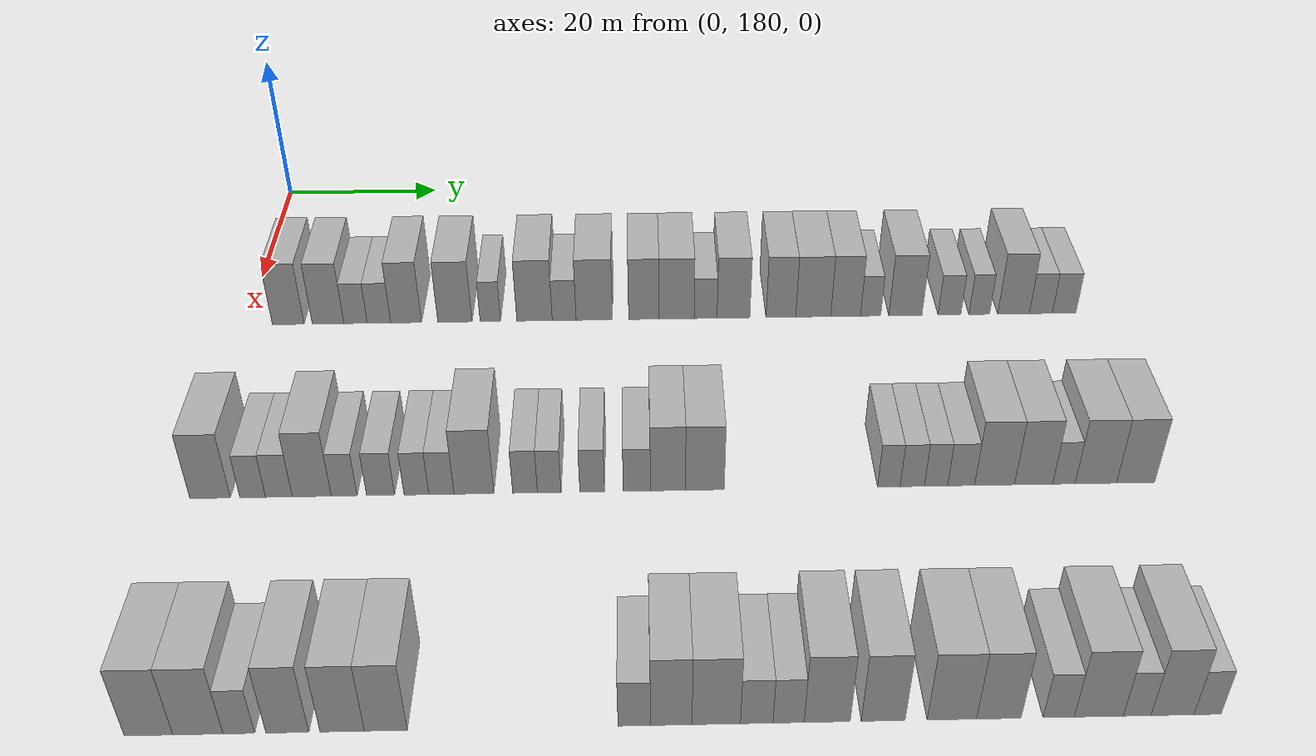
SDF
<sdf version="1.6">
 <world name="default">
  <model name="building_115">
   <static>1</static>
   <pose>25.0000 185.1047 0 0.000000 0.000000 0.000000</pose>
   <link name="link">
    <pose>0 0 4.50 0 0 0</pose>
    <collision name="collision"><geometry><box><size>10.0000 3.8552 9.0000</size></box></geometry></collision>
    <visual name="visual">
     <cast_shadows>0</cast_shadows>
     <geometry><box><size>10.0000 3.8552 9.0000</size></box></geometry>
     <material>
      <script>
       <uri>model://HANNAS_wall/materials/scripts</uri>
       <uri>model://HANNAS_wall/materials/textures</uri>
       <name>vrc/HANNAS_wall</name>
      </script>
     </material>
    </visual>
   </link>
  </model>
  <model name="building_116">
   <static>1</static>
   <pose>25.0000 189.9615 0 0.000000 0.000000 0.000000</pose>
   <link name="link">
    <pose>0 0 4.50 0 0 0</pose>
    <collision name="collision"><geometry><box><size>10.0000 3.8583 9.0000</size></box></geometry></collision>
    <visual name="visual">
     <cast_shadows>0</cast_shadows>
     <geometry><box><size>10.0000 3.8583 9.0000</size></box></geometry>
     <material>
      <script>
       <uri>model://HANNAS_wall/materials/scripts</uri>
       <uri>model://HANNAS_wall/materials/textures</uri>
       <name>vrc/HANNAS_wall</name>
      </script>
     </material>
    </visual>
   </link>
  </model>
  <model name="building_117">
   <static>1</static>
   <pose>25.0000 193.3164 0 0.000000 0.000000 0.000000</pose>
   <link name="link">
    <pose>0 0 3.00 0 0 0</pose>
    <collision name="collision"><geometry><box><size>10.0000 2.8515 6.0000</size></box></geometry></collision>
    <visual name="visual">
     <cast_shadows>0</cast_shadows>
     <geometry><box><size>10.0000 2.8515 6.0000</size></box></geometry>
     <material>
      <script>
       <uri>model://HANNAS_wall/materials/scripts</uri>
       <uri>model://HANNAS_wall/materials/textures</uri>
       <name>vrc/HANNAS_wall</name>
      </script>
     </material>
    </visual>
   </link>
  </model>
  <model name="building_118">
   <static>1</static>
   <pose>25.0000 196.1739 0 0.000000 0.000000 0.000000</pose>
   <link name="link">
    <pose>0 0 3.00 0 0 0</pose>
    <collision name="collision"><geometry><box><size>10.0000 2.8635 6.0000</size></box></geometry></collision>
    <visual name="visual">
     <cast_shadows>0</cast_shadows>
     <geometry><box><size>10.0000 2.8635 6.0000</size></box></geometry>
     <material>
      <script>
       <uri>model://HANNAS_wall/materials/scripts</uri>
       <uri>model://HANNAS_wall/materials/textures</uri>
       <name>vrc/HANNAS_wall</name>
      </script>
     </material>
    </visual>
   </link>
  </model>
  <model name="building_119">
   <static>1</static>
   <pose>25.0000 199.4936 0 0.000000 0.000000 0.000000</pose>
   <link name="link">
    <pose>0 0 4.50 0 0 0</pose>
    <collision name="collision"><geometry><box><size>10.0000 3.7759 9.0000</size></box></geometry></collision>
    <visual name="visual">
     <cast_shadows>0</cast_shadows>
     <geometry><box><size>10.0000 3.7759 9.0000</size></box></geometry>
     <material>
      <script>
       <uri>model://HANNAS_wall/materials/scripts</uri>
       <uri>model://HANNAS_wall/materials/textures</uri>
       <name>vrc/HANNAS_wall</name>
      </script>
     </material>
    </visual>
   </link>
  </model>
  <model name="building_120">
   <static>1</static>
   <pose>25.0000 205.4732 0 0.000000 0.000000 0.000000</pose>
   <link name="link">
    <pose>0 0 4.50 0 0 0</pose>
    <collision name="collision"><geometry><box><size>10.0000 4.1834 9.0000</size></box></geometry></collision>
    <visual name="visual">
     <cast_shadows>0</cast_shadows>
     <geometry><box><size>10.0000 4.1834 9.0000</size></box></geometry>
     <material>
      <script>
       <uri>model://HANNAS_wall/materials/scripts</uri>
       <uri>model://HANNAS_wall/materials/textures</uri>
       <name>vrc/HANNAS_wall</name>
      </script>
     </material>
    </visual>
   </link>
  </model>
  <model name="building_121">
   <static>1</static>
   <pose>25.0000 209.8141 0 0.000000 0.000000 0.000000</pose>
   <link name="link">
    <pose>0 0 3.00 0 0 0</pose>
    <collision name="collision"><geometry><box><size>10.0000 2.4983 6.0000</size></box></geometry></collision>
    <visual name="visual">
     <cast_shadows>0</cast_shadows>
     <geometry><box><size>10.0000 2.4983 6.0000</size></box></geometry>
     <material>
      <script>
       <uri>model://HANNAS_wall/materials/scripts</uri>
       <uri>model://HANNAS_wall/materials/textures</uri>
       <name>vrc/HANNAS_wall</name>
      </script>
     </material>
    </visual>
   </link>
  </model>
  <model name="building_122">
   <static>1</static>
   <pose>25.0000 215.2289 0 0.000000 0.000000 0.000000</pose>
   <link name="link">
    <pose>0 0 4.50 0 0 0</pose>
    <collision name="collision"><geometry><box><size>10.0000 4.3314 9.0000</size></box></geometry></collision>
    <visual name="visual">
     <cast_shadows>0</cast_shadows>
     <geometry><box><size>10.0000 4.3314 9.0000</size></box></geometry>
     <material>
      <script>
       <uri>model://HANNAS_wall/materials/scripts</uri>
       <uri>model://HANNAS_wall/materials/textures</uri>
       <name>vrc/HANNAS_wall</name>
      </script>
     </material>
    </visual>
   </link>
  </model>
  <model name="building_123">
   <static>1</static>
   <pose>25.0000 218.8614 0 0.000000 0.000000 0.000000</pose>
   <link name="link">
    <pose>0 0 3.00 0 0 0</pose>
    <collision name="collision"><geometry><box><size>10.0000 2.9336 6.0000</size></box></geometry></collision>
    <visual name="visual">
     <cast_shadows>0</cast_shadows>
     <geometry><box><size>10.0000 2.9336 6.0000</size></box></geometry>
     <material>
      <script>
       <uri>model://HANNAS_wall/materials/scripts</uri>
       <uri>model://HANNAS_wall/materials/textures</uri>
       <name>vrc/HANNAS_wall</name>
      </script>
     </material>
    </visual>
   </link>
  </model>
  <model name="building_124">
   <static>1</static>
   <pose>25.0000 222.5614 0 0.000000 0.000000 0.000000</pose>
   <link name="link">
    <pose>0 0 4.50 0 0 0</pose>
    <collision name="collision"><geometry><box><size>10.0000 4.4664 9.0000</size></box></geometry></collision>
    <visual name="visual">
     <cast_shadows>0</cast_shadows>
     <geometry><box><size>10.0000 4.4664 9.0000</size></box></geometry>
     <material>
      <script>
       <uri>model://HANNAS_wall/materials/scripts</uri>
       <uri>model://HANNAS_wall/materials/textures</uri>
       <name>vrc/HANNAS_wall</name>
      </script>
     </material>
    </visual>
   </link>
  </model>
  <model name="building_125">
   <static>1</static>
   <pose>25.0000 228.6683 0 0.000000 0.000000 0.000000</pose>
   <link name="link">
    <pose>0 0 4.50 0 0 0</pose>
    <collision name="collision"><geometry><box><size>10.0000 3.7473 9.0000</size></box></geometry></collision>
    <visual name="visual">
     <cast_shadows>0</cast_shadows>
     <geometry><box><size>10.0000 3.7473 9.0000</size></box></geometry>
     <material>
      <script>
       <uri>model://HANNAS_wall/materials/scripts</uri>
       <uri>model://HANNAS_wall/materials/textures</uri>
       <name>vrc/HANNAS_wall</name>
      </script>
     </material>
    </visual>
   </link>
  </model>
  <model name="building_126">
   <static>1</static>
   <pose>25.0000 232.6930 0 0.000000 0.000000 0.000000</pose>
   <link name="link">
    <pose>0 0 4.50 0 0 0</pose>
    <collision name="collision"><geometry><box><size>10.0000 4.3021 9.0000</size></box></geometry></collision>
    <visual name="visual">
     <cast_shadows>0</cast_shadows>
     <geometry><box><size>10.0000 4.3021 9.0000</size></box></geometry>
     <material>
      <script>
       <uri>model://HANNAS_wall/materials/scripts</uri>
       <uri>model://HANNAS_wall/materials/textures</uri>
       <name>vrc/HANNAS_wall</name>
      </script>
     </material>
    </visual>
   </link>
  </model>
  <model name="building_127">
   <static>1</static>
   <pose>25.0000 236.2551 0 0.000000 0.000000 0.000000</pose>
   <link name="link">
    <pose>0 0 3.00 0 0 0</pose>
    <collision name="collision"><geometry><box><size>10.0000 2.8223 6.0000</size></box></geometry></collision>
    <visual name="visual">
     <cast_shadows>0</cast_shadows>
     <geometry><box><size>10.0000 2.8223 6.0000</size></box></geometry>
     <material>
      <script>
       <uri>model://HANNAS_wall/materials/scripts</uri>
       <uri>model://HANNAS_wall/materials/textures</uri>
       <name>vrc/HANNAS_wall</name>
      </script>
     </material>
    </visual>
   </link>
  </model>
  <model name="building_128">
   <static>1</static>
   <pose>25.0000 239.6885 0 0.000000 0.000000 0.000000</pose>
   <link name="link">
    <pose>0 0 4.50 0 0 0</pose>
    <collision name="collision"><geometry><box><size>10.0000 4.0445 9.0000</size></box></geometry></collision>
    <visual name="visual">
     <cast_shadows>0</cast_shadows>
     <geometry><box><size>10.0000 4.0445 9.0000</size></box></geometry>
     <material>
      <script>
       <uri>model://HANNAS_wall/materials/scripts</uri>
       <uri>model://HANNAS_wall/materials/textures</uri>
       <name>vrc/HANNAS_wall</name>
      </script>
     </material>
    </visual>
   </link>
  </model>
  <model name="building_129">
   <static>1</static>
   <pose>25.0000 245.5400 0 0.000000 0.000000 0.000000</pose>
   <link name="link">
    <pose>0 0 4.50 0 0 0</pose>
    <collision name="collision"><geometry><box><size>10.0000 3.6584 9.0000</size></box></geometry></collision>
    <visual name="visual">
     <cast_shadows>0</cast_shadows>
     <geometry><box><size>10.0000 3.6584 9.0000</size></box></geometry>
     <material>
      <script>
       <uri>model://HANNAS_wall/materials/scripts</uri>
       <uri>model://HANNAS_wall/materials/textures</uri>
       <name>vrc/HANNAS_wall</name>
      </script>
     </material>
    </visual>
   </link>
  </model>
  <model name="building_130">
   <static>1</static>
   <pose>25.0000 249.5353 0 0.000000 0.000000 0.000000</pose>
   <link name="link">
    <pose>0 0 4.50 0 0 0</pose>
    <collision name="collision"><geometry><box><size>10.0000 4.3322 9.0000</size></box></geometry></collision>
    <visual name="visual">
     <cast_shadows>0</cast_shadows>
     <geometry><box><size>10.0000 4.3322 9.0000</size></box></geometry>
     <material>
      <script>
       <uri>model://HANNAS_wall/materials/scripts</uri>
       <uri>model://HANNAS_wall/materials/textures</uri>
       <name>vrc/HANNAS_wall</name>
      </script>
     </material>
    </visual>
   </link>
  </model>
  <model name="building_131">
   <static>1</static>
   <pose>25.0000 253.5458 0 0.000000 0.000000 0.000000</pose>
   <link name="link">
    <pose>0 0 4.50 0 0 0</pose>
    <collision name="collision"><geometry><box><size>10.0000 3.6887 9.0000</size></box></geometry></collision>
    <visual name="visual">
     <cast_shadows>0</cast_shadows>
     <geometry><box><size>10.0000 3.6887 9.0000</size></box></geometry>
     <material>
      <script>
       <uri>model://HANNAS_wall/materials/scripts</uri>
       <uri>model://HANNAS_wall/materials/textures</uri>
       <name>vrc/HANNAS_wall</name>
      </script>
     </material>
    </visual>
   </link>
  </model>
  <model name="building_132">
   <static>1</static>
   <pose>25.0000 256.6373 0 0.000000 0.000000 0.000000</pose>
   <link name="link">
    <pose>0 0 3.00 0 0 0</pose>
    <collision name="collision"><geometry><box><size>10.0000 2.4943 6.0000</size></box></geometry></collision>
    <visual name="visual">
     <cast_shadows>0</cast_shadows>
     <geometry><box><size>10.0000 2.4943 6.0000</size></box></geometry>
     <material>
      <script>
       <uri>model://HANNAS_wall/materials/scripts</uri>
       <uri>model://HANNAS_wall/materials/textures</uri>
       <name>vrc/HANNAS_wall</name>
      </script>
     </material>
    </visual>
   </link>
  </model>
  <model name="building_133">
   <static>1</static>
   <pose>25.0000 260.9428 0 0.000000 0.000000 0.000000</pose>
   <link name="link">
    <pose>0 0 4.50 0 0 0</pose>
    <collision name="collision"><geometry><box><size>10.0000 4.1168 9.0000</size></box></geometry></collision>
    <visual name="visual">
     <cast_shadows>0</cast_shadows>
     <geometry><box><size>10.0000 4.1168 9.0000</size></box></geometry>
     <material>
      <script>
       <uri>model://HANNAS_wall/materials/scripts</uri>
       <uri>model://HANNAS_wall/materials/textures</uri>
       <name>vrc/HANNAS_wall</name>
      </script>
     </material>
    </visual>
   </link>
  </model>
  <model name="building_134">
   <static>1</static>
   <pose>25.0000 266.4150 0 0.000000 0.000000 0.000000</pose>
   <link name="link">
    <pose>0 0 3.00 0 0 0</pose>
    <collision name="collision"><geometry><box><size>10.0000 2.8276 6.0000</size></box></geometry></collision>
    <visual name="visual">
     <cast_shadows>0</cast_shadows>
     <geometry><box><size>10.0000 2.8276 6.0000</size></box></geometry>
     <material>
      <script>
       <uri>model://HANNAS_wall/materials/scripts</uri>
       <uri>model://HANNAS_wall/materials/textures</uri>
       <name>vrc/HANNAS_wall</name>
      </script>
     </material>
    </visual>
   </link>
  </model>
  <model name="building_135">
   <static>1</static>
   <pose>25.0000 270.1102 0 0.000000 0.000000 0.000000</pose>
   <link name="link">
    <pose>0 0 3.00 0 0 0</pose>
    <collision name="collision"><geometry><box><size>10.0000 2.5628 6.0000</size></box></geometry></collision>
    <visual name="visual">
     <cast_shadows>0</cast_shadows>
     <geometry><box><size>10.0000 2.5628 6.0000</size></box></geometry>
     <material>
      <script>
       <uri>model://HANNAS_wall/materials/scripts</uri>
       <uri>model://HANNAS_wall/materials/textures</uri>
       <name>vrc/HANNAS_wall</name>
      </script>
     </material>
    </visual>
   </link>
  </model>
  <model name="building_136">
   <static>1</static>
   <pose>25.0000 274.3610 0 0.000000 0.000000 0.000000</pose>
   <link name="link">
    <pose>0 0 4.50 0 0 0</pose>
    <collision name="collision"><geometry><box><size>10.0000 3.9387 9.0000</size></box></geometry></collision>
    <visual name="visual">
     <cast_shadows>0</cast_shadows>
     <geometry><box><size>10.0000 3.9387 9.0000</size></box></geometry>
     <material>
      <script>
       <uri>model://HANNAS_wall/materials/scripts</uri>
       <uri>model://HANNAS_wall/materials/textures</uri>
       <name>vrc/HANNAS_wall</name>
      </script>
     </material>
    </visual>
   </link>
  </model>
  <model name="building_137">
   <static>1</static>
   <pose>25.0000 277.7580 0 0.000000 0.000000 0.000000</pose>
   <link name="link">
    <pose>0 0 3.00 0 0 0</pose>
    <collision name="collision"><geometry><box><size>10.0000 2.8553 6.0000</size></box></geometry></collision>
    <visual name="visual">
     <cast_shadows>0</cast_shadows>
     <geometry><box><size>10.0000 2.8553 6.0000</size></box></geometry>
     <material>
      <script>
       <uri>model://HANNAS_wall/materials/scripts</uri>
       <uri>model://HANNAS_wall/materials/textures</uri>
       <name>vrc/HANNAS_wall</name>
      </script>
     </material>
    </visual>
   </link>
  </model>
  <model name="building_138">
   <static>1</static>
   <pose>25.0000 280.6515 0 0.000000 0.000000 0.000000</pose>
   <link name="link">
    <pose>0 0 3.00 0 0 0</pose>
    <collision name="collision"><geometry><box><size>10.0000 2.9317 6.0000</size></box></geometry></collision>
    <visual name="visual">
     <cast_shadows>0</cast_shadows>
     <geometry><box><size>10.0000 2.9317 6.0000</size></box></geometry>
     <material>
      <script>
       <uri>model://HANNAS_wall/materials/scripts</uri>
       <uri>model://HANNAS_wall/materials/textures</uri>
       <name>vrc/HANNAS_wall</name>
      </script>
     </material>
    </visual>
   </link>
  </model>
  <model name="building_257">
   <static>1</static>
   <pose>55.0000 182.3854 0 0.000000 0.000000 0.000000</pose>
   <link name="link">
    <pose>0 0 4.50 0 0 0</pose>
    <collision name="collision"><geometry><box><size>10.0000 4.2758 9.0000</size></box></geometry></collision>
    <visual name="visual">
     <cast_shadows>0</cast_shadows>
     <geometry><box><size>10.0000 4.2758 9.0000</size></box></geometry>
     <material>
      <script>
       <uri>model://HANNAS_wall/materials/scripts</uri>
       <uri>model://HANNAS_wall/materials/textures</uri>
       <name>vrc/HANNAS_wall</name>
      </script>
     </material>
    </visual>
   </link>
  </model>
  <model name="building_258">
   <static>1</static>
   <pose>55.0000 186.8726 0 0.000000 0.000000 0.000000</pose>
   <link name="link">
    <pose>0 0 3.00 0 0 0</pose>
    <collision name="collision"><geometry><box><size>10.0000 2.6986 6.0000</size></box></geometry></collision>
    <visual name="visual">
     <cast_shadows>0</cast_shadows>
     <geometry><box><size>10.0000 2.6986 6.0000</size></box></geometry>
     <material>
      <script>
       <uri>model://HANNAS_wall/materials/scripts</uri>
       <uri>model://HANNAS_wall/materials/textures</uri>
       <name>vrc/HANNAS_wall</name>
      </script>
     </material>
    </visual>
   </link>
  </model>
  <model name="building_259">
   <static>1</static>
   <pose>55.0000 189.6357 0 0.000000 0.000000 0.000000</pose>
   <link name="link">
    <pose>0 0 3.00 0 0 0</pose>
    <collision name="collision"><geometry><box><size>10.0000 2.8275 6.0000</size></box></geometry></collision>
    <visual name="visual">
     <cast_shadows>0</cast_shadows>
     <geometry><box><size>10.0000 2.8275 6.0000</size></box></geometry>
     <material>
      <script>
       <uri>model://HANNAS_wall/materials/scripts</uri>
       <uri>model://HANNAS_wall/materials/textures</uri>
       <name>vrc/HANNAS_wall</name>
      </script>
     </material>
    </visual>
   </link>
  </model>
  <model name="building_260">
   <static>1</static>
   <pose>55.0000 193.1069 0 0.000000 0.000000 0.000000</pose>
   <link name="link">
    <pose>0 0 4.50 0 0 0</pose>
    <collision name="collision"><geometry><box><size>10.0000 4.1150 9.0000</size></box></geometry></collision>
    <visual name="visual">
     <cast_shadows>0</cast_shadows>
     <geometry><box><size>10.0000 4.1150 9.0000</size></box></geometry>
     <material>
      <script>
       <uri>model://HANNAS_wall/materials/scripts</uri>
       <uri>model://HANNAS_wall/materials/textures</uri>
       <name>vrc/HANNAS_wall</name>
      </script>
     </material>
    </visual>
   </link>
  </model>
  <model name="building_261">
   <static>1</static>
   <pose>55.0000 196.5313 0 0.000000 0.000000 0.000000</pose>
   <link name="link">
    <pose>0 0 3.00 0 0 0</pose>
    <collision name="collision"><geometry><box><size>10.0000 2.7338 6.0000</size></box></geometry></collision>
    <visual name="visual">
     <cast_shadows>0</cast_shadows>
     <geometry><box><size>10.0000 2.7338 6.0000</size></box></geometry>
     <material>
      <script>
       <uri>model://HANNAS_wall/materials/scripts</uri>
       <uri>model://HANNAS_wall/materials/textures</uri>
       <name>vrc/HANNAS_wall</name>
      </script>
     </material>
    </visual>
   </link>
  </model>
  <model name="building_262">
   <static>1</static>
   <pose>55.0000 200.3812 0 0.000000 0.000000 0.000000</pose>
   <link name="link">
    <pose>0 0 3.00 0 0 0</pose>
    <collision name="collision"><geometry><box><size>10.0000 2.9660 6.0000</size></box></geometry></collision>
    <visual name="visual">
     <cast_shadows>0</cast_shadows>
     <geometry><box><size>10.0000 2.9660 6.0000</size></box></geometry>
     <material>
      <script>
       <uri>model://HANNAS_wall/materials/scripts</uri>
       <uri>model://HANNAS_wall/materials/textures</uri>
       <name>vrc/HANNAS_wall</name>
      </script>
     </material>
    </visual>
   </link>
  </model>
  <model name="building_263">
   <static>1</static>
   <pose>55.0000 204.1714 0 0.000000 0.000000 0.000000</pose>
   <link name="link">
    <pose>0 0 3.00 0 0 0</pose>
    <collision name="collision"><geometry><box><size>10.0000 2.6144 6.0000</size></box></geometry></collision>
    <visual name="visual">
     <cast_shadows>0</cast_shadows>
     <geometry><box><size>10.0000 2.6144 6.0000</size></box></geometry>
     <material>
      <script>
       <uri>model://HANNAS_wall/materials/scripts</uri>
       <uri>model://HANNAS_wall/materials/textures</uri>
       <name>vrc/HANNAS_wall</name>
      </script>
     </material>
    </visual>
   </link>
  </model>
  <model name="building_264">
   <static>1</static>
   <pose>55.0000 206.8154 0 0.000000 0.000000 0.000000</pose>
   <link name="link">
    <pose>0 0 3.00 0 0 0</pose>
    <collision name="collision"><geometry><box><size>10.0000 2.6737 6.0000</size></box></geometry></collision>
    <visual name="visual">
     <cast_shadows>0</cast_shadows>
     <geometry><box><size>10.0000 2.6737 6.0000</size></box></geometry>
     <material>
      <script>
       <uri>model://HANNAS_wall/materials/scripts</uri>
       <uri>model://HANNAS_wall/materials/textures</uri>
       <name>vrc/HANNAS_wall</name>
      </script>
     </material>
    </visual>
   </link>
  </model>
  <model name="building_265">
   <static>1</static>
   <pose>55.0000 210.2683 0 0.000000 0.000000 0.000000</pose>
   <link name="link">
    <pose>0 0 4.50 0 0 0</pose>
    <collision name="collision"><geometry><box><size>10.0000 4.2320 9.0000</size></box></geometry></collision>
    <visual name="visual">
     <cast_shadows>0</cast_shadows>
     <geometry><box><size>10.0000 4.2320 9.0000</size></box></geometry>
     <material>
      <script>
       <uri>model://HANNAS_wall/materials/scripts</uri>
       <uri>model://HANNAS_wall/materials/textures</uri>
       <name>vrc/HANNAS_wall</name>
      </script>
     </material>
    </visual>
   </link>
  </model>
  <model name="building_266">
   <static>1</static>
   <pose>55.0000 215.6974 0 0.000000 0.000000 0.000000</pose>
   <link name="link">
    <pose>0 0 3.00 0 0 0</pose>
    <collision name="collision"><geometry><box><size>10.0000 2.6263 6.0000</size></box></geometry></collision>
    <visual name="visual">
     <cast_shadows>0</cast_shadows>
     <geometry><box><size>10.0000 2.6263 6.0000</size></box></geometry>
     <material>
      <script>
       <uri>model://HANNAS_wall/materials/scripts</uri>
       <uri>model://HANNAS_wall/materials/textures</uri>
       <name>vrc/HANNAS_wall</name>
      </script>
     </material>
    </visual>
   </link>
  </model>
  <model name="building_267">
   <static>1</static>
   <pose>55.0000 218.2663 0 0.000000 0.000000 0.000000</pose>
   <link name="link">
    <pose>0 0 3.00 0 0 0</pose>
    <collision name="collision"><geometry><box><size>10.0000 2.5113 6.0000</size></box></geometry></collision>
    <visual name="visual">
     <cast_shadows>0</cast_shadows>
     <geometry><box><size>10.0000 2.5113 6.0000</size></box></geometry>
     <material>
      <script>
       <uri>model://HANNAS_wall/materials/scripts</uri>
       <uri>model://HANNAS_wall/materials/textures</uri>
       <name>vrc/HANNAS_wall</name>
      </script>
     </material>
    </visual>
   </link>
  </model>
  <model name="building_268">
   <static>1</static>
   <pose>55.0000 222.8386 0 0.000000 0.000000 0.000000</pose>
   <link name="link">
    <pose>0 0 3.00 0 0 0</pose>
    <collision name="collision"><geometry><box><size>10.0000 2.6334 6.0000</size></box></geometry></collision>
    <visual name="visual">
     <cast_shadows>0</cast_shadows>
     <geometry><box><size>10.0000 2.6334 6.0000</size></box></geometry>
     <material>
      <script>
       <uri>model://HANNAS_wall/materials/scripts</uri>
       <uri>model://HANNAS_wall/materials/textures</uri>
       <name>vrc/HANNAS_wall</name>
      </script>
     </material>
    </visual>
   </link>
  </model>
  <model name="building_269">
   <static>1</static>
   <pose>55.0000 227.5955 0 0.000000 0.000000 0.000000</pose>
   <link name="link">
    <pose>0 0 3.00 0 0 0</pose>
    <collision name="collision"><geometry><box><size>10.0000 2.8803 6.0000</size></box></geometry></collision>
    <visual name="visual">
     <cast_shadows>0</cast_shadows>
     <geometry><box><size>10.0000 2.8803 6.0000</size></box></geometry>
     <material>
      <script>
       <uri>model://HANNAS_wall/materials/scripts</uri>
       <uri>model://HANNAS_wall/materials/textures</uri>
       <name>vrc/HANNAS_wall</name>
      </script>
     </material>
    </visual>
   </link>
  </model>
  <model name="building_270">
   <static>1</static>
   <pose>55.0000 230.8943 0 0.000000 0.000000 0.000000</pose>
   <link name="link">
    <pose>0 0 4.50 0 0 0</pose>
    <collision name="collision"><geometry><box><size>10.0000 3.7173 9.0000</size></box></geometry></collision>
    <visual name="visual">
     <cast_shadows>0</cast_shadows>
     <geometry><box><size>10.0000 3.7173 9.0000</size></box></geometry>
     <material>
      <script>
       <uri>model://HANNAS_wall/materials/scripts</uri>
       <uri>model://HANNAS_wall/materials/textures</uri>
       <name>vrc/HANNAS_wall</name>
      </script>
     </material>
    </visual>
   </link>
  </model>
  <model name="building_271">
   <static>1</static>
   <pose>55.0000 234.8254 0 0.000000 0.000000 0.000000</pose>
   <link name="link">
    <pose>0 0 4.50 0 0 0</pose>
    <collision name="collision"><geometry><box><size>10.0000 4.1449 9.0000</size></box></geometry></collision>
    <visual name="visual">
     <cast_shadows>0</cast_shadows>
     <geometry><box><size>10.0000 4.1449 9.0000</size></box></geometry>
     <material>
      <script>
       <uri>model://HANNAS_wall/materials/scripts</uri>
       <uri>model://HANNAS_wall/materials/textures</uri>
       <name>vrc/HANNAS_wall</name>
      </script>
     </material>
    </visual>
   </link>
  </model>
  <model name="building_272">
   <static>1</static>
   <pose>55.0000 254.5272 0 0.000000 0.000000 0.000000</pose>
   <link name="link">
    <pose>0 0 3.00 0 0 0</pose>
    <collision name="collision"><geometry><box><size>10.0000 2.4196 6.0000</size></box></geometry></collision>
    <visual name="visual">
     <cast_shadows>0</cast_shadows>
     <geometry><box><size>10.0000 2.4196 6.0000</size></box></geometry>
     <material>
      <script>
       <uri>model://HANNAS_wall/materials/scripts</uri>
       <uri>model://HANNAS_wall/materials/textures</uri>
       <name>vrc/HANNAS_wall</name>
      </script>
     </material>
    </visual>
   </link>
  </model>
  <model name="building_273">
   <static>1</static>
   <pose>55.0000 257.0341 0 0.000000 0.000000 0.000000</pose>
   <link name="link">
    <pose>0 0 3.00 0 0 0</pose>
    <collision name="collision"><geometry><box><size>10.0000 2.5943 6.0000</size></box></geometry></collision>
    <visual name="visual">
     <cast_shadows>0</cast_shadows>
     <geometry><box><size>10.0000 2.5943 6.0000</size></box></geometry>
     <material>
      <script>
       <uri>model://HANNAS_wall/materials/scripts</uri>
       <uri>model://HANNAS_wall/materials/textures</uri>
       <name>vrc/HANNAS_wall</name>
      </script>
     </material>
    </visual>
   </link>
  </model>
  <model name="building_274">
   <static>1</static>
   <pose>55.0000 259.5784 0 0.000000 0.000000 0.000000</pose>
   <link name="link">
    <pose>0 0 3.00 0 0 0</pose>
    <collision name="collision"><geometry><box><size>10.0000 2.4942 6.0000</size></box></geometry></collision>
    <visual name="visual">
     <cast_shadows>0</cast_shadows>
     <geometry><box><size>10.0000 2.4942 6.0000</size></box></geometry>
     <material>
      <script>
       <uri>model://HANNAS_wall/materials/scripts</uri>
       <uri>model://HANNAS_wall/materials/textures</uri>
       <name>vrc/HANNAS_wall</name>
      </script>
     </material>
    </visual>
   </link>
  </model>
  <model name="building_275">
   <static>1</static>
   <pose>55.0000 262.2783 0 0.000000 0.000000 0.000000</pose>
   <link name="link">
    <pose>0 0 3.00 0 0 0</pose>
    <collision name="collision"><geometry><box><size>10.0000 2.9055 6.0000</size></box></geometry></collision>
    <visual name="visual">
     <cast_shadows>0</cast_shadows>
     <geometry><box><size>10.0000 2.9055 6.0000</size></box></geometry>
     <material>
      <script>
       <uri>model://HANNAS_wall/materials/scripts</uri>
       <uri>model://HANNAS_wall/materials/textures</uri>
       <name>vrc/HANNAS_wall</name>
      </script>
     </material>
    </visual>
   </link>
  </model>
  <model name="building_276">
   <static>1</static>
   <pose>55.0000 265.8758 0 0.000000 0.000000 0.000000</pose>
   <link name="link">
    <pose>0 0 4.50 0 0 0</pose>
    <collision name="collision"><geometry><box><size>10.0000 4.2895 9.0000</size></box></geometry></collision>
    <visual name="visual">
     <cast_shadows>0</cast_shadows>
     <geometry><box><size>10.0000 4.2895 9.0000</size></box></geometry>
     <material>
      <script>
       <uri>model://HANNAS_wall/materials/scripts</uri>
       <uri>model://HANNAS_wall/materials/textures</uri>
       <name>vrc/HANNAS_wall</name>
      </script>
     </material>
    </visual>
   </link>
  </model>
  <model name="building_277">
   <static>1</static>
   <pose>55.0000 270.0731 0 0.000000 0.000000 0.000000</pose>
   <link name="link">
    <pose>0 0 4.50 0 0 0</pose>
    <collision name="collision"><geometry><box><size>10.0000 4.1050 9.0000</size></box></geometry></collision>
    <visual name="visual">
     <cast_shadows>0</cast_shadows>
     <geometry><box><size>10.0000 4.1050 9.0000</size></box></geometry>
     <material>
      <script>
       <uri>model://HANNAS_wall/materials/scripts</uri>
       <uri>model://HANNAS_wall/materials/textures</uri>
       <name>vrc/HANNAS_wall</name>
      </script>
     </material>
    </visual>
   </link>
  </model>
  <model name="building_278">
   <static>1</static>
   <pose>55.0000 273.3343 0 0.000000 0.000000 0.000000</pose>
   <link name="link">
    <pose>0 0 3.00 0 0 0</pose>
    <collision name="collision"><geometry><box><size>10.0000 2.4174 6.0000</size></box></geometry></collision>
    <visual name="visual">
     <cast_shadows>0</cast_shadows>
     <geometry><box><size>10.0000 2.4174 6.0000</size></box></geometry>
     <material>
      <script>
       <uri>model://HANNAS_wall/materials/scripts</uri>
       <uri>model://HANNAS_wall/materials/textures</uri>
       <name>vrc/HANNAS_wall</name>
      </script>
     </material>
    </visual>
   </link>
  </model>
  <model name="building_279">
   <static>1</static>
   <pose>55.0000 276.7781 0 0.000000 0.000000 0.000000</pose>
   <link name="link">
    <pose>0 0 4.50 0 0 0</pose>
    <collision name="collision"><geometry><box><size>10.0000 4.4703 9.0000</size></box></geometry></collision>
    <visual name="visual">
     <cast_shadows>0</cast_shadows>
     <geometry><box><size>10.0000 4.4703 9.0000</size></box></geometry>
     <material>
      <script>
       <uri>model://HANNAS_wall/materials/scripts</uri>
       <uri>model://HANNAS_wall/materials/textures</uri>
       <name>vrc/HANNAS_wall</name>
      </script>
     </material>
    </visual>
   </link>
  </model>
  <model name="building_280">
   <static>1</static>
   <pose>55.0000 281.0732 0 0.000000 0.000000 0.000000</pose>
   <link name="link">
    <pose>0 0 4.50 0 0 0</pose>
    <collision name="collision"><geometry><box><size>10.0000 4.1199 9.0000</size></box></geometry></collision>
    <visual name="visual">
     <cast_shadows>0</cast_shadows>
     <geometry><box><size>10.0000 4.1199 9.0000</size></box></geometry>
     <material>
      <script>
       <uri>model://HANNAS_wall/materials/scripts</uri>
       <uri>model://HANNAS_wall/materials/textures</uri>
       <name>vrc/HANNAS_wall</name>
      </script>
     </material>
    </visual>
   </link>
  </model>
  <model name="building_391">
   <static>1</static>
   <pose>85.0000 183.6862 0 0.000000 0.000000 0.000000</pose>
   <link name="link">
    <pose>0 0 4.50 0 0 0</pose>
    <collision name="collision"><geometry><box><size>10.0000 4.3220 9.0000</size></box></geometry></collision>
    <visual name="visual">
     <cast_shadows>0</cast_shadows>
     <geometry><box><size>10.0000 4.3220 9.0000</size></box></geometry>
     <material>
      <script>
       <uri>model://HANNAS_wall/materials/scripts</uri>
       <uri>model://HANNAS_wall/materials/textures</uri>
       <name>vrc/HANNAS_wall</name>
      </script>
     </material>
    </visual>
   </link>
  </model>
  <model name="building_392">
   <static>1</static>
   <pose>85.0000 188.0830 0 0.000000 0.000000 0.000000</pose>
   <link name="link">
    <pose>0 0 4.50 0 0 0</pose>
    <collision name="collision"><geometry><box><size>10.0000 4.4716 9.0000</size></box></geometry></collision>
    <visual name="visual">
     <cast_shadows>0</cast_shadows>
     <geometry><box><size>10.0000 4.4716 9.0000</size></box></geometry>
     <material>
      <script>
       <uri>model://HANNAS_wall/materials/scripts</uri>
       <uri>model://HANNAS_wall/materials/textures</uri>
       <name>vrc/HANNAS_wall</name>
      </script>
     </material>
    </visual>
   </link>
  </model>
  <model name="building_393">
   <static>1</static>
   <pose>85.0000 191.7302 0 0.000000 0.000000 0.000000</pose>
   <link name="link">
    <pose>0 0 3.00 0 0 0</pose>
    <collision name="collision"><geometry><box><size>10.0000 2.8227 6.0000</size></box></geometry></collision>
    <visual name="visual">
     <cast_shadows>0</cast_shadows>
     <geometry><box><size>10.0000 2.8227 6.0000</size></box></geometry>
     <material>
      <script>
       <uri>model://HANNAS_wall/materials/scripts</uri>
       <uri>model://HANNAS_wall/materials/textures</uri>
       <name>vrc/HANNAS_wall</name>
      </script>
     </material>
    </visual>
   </link>
  </model>
  <model name="building_394">
   <static>1</static>
   <pose>85.0000 196.0574 0 0.000000 0.000000 0.000000</pose>
   <link name="link">
    <pose>0 0 4.50 0 0 0</pose>
    <collision name="collision"><geometry><box><size>10.0000 3.8317 9.0000</size></box></geometry></collision>
    <visual name="visual">
     <cast_shadows>0</cast_shadows>
     <geometry><box><size>10.0000 3.8317 9.0000</size></box></geometry>
     <material>
      <script>
       <uri>model://HANNAS_wall/materials/scripts</uri>
       <uri>model://HANNAS_wall/materials/textures</uri>
       <name>vrc/HANNAS_wall</name>
      </script>
     </material>
    </visual>
   </link>
  </model>
  <model name="building_395">
   <static>1</static>
   <pose>85.0000 200.9519 0 0.000000 0.000000 0.000000</pose>
   <link name="link">
    <pose>0 0 4.50 0 0 0</pose>
    <collision name="collision"><geometry><box><size>10.0000 3.9573 9.0000</size></box></geometry></collision>
    <visual name="visual">
     <cast_shadows>0</cast_shadows>
     <geometry><box><size>10.0000 3.9573 9.0000</size></box></geometry>
     <material>
      <script>
       <uri>model://HANNAS_wall/materials/scripts</uri>
       <uri>model://HANNAS_wall/materials/textures</uri>
       <name>vrc/HANNAS_wall</name>
      </script>
     </material>
    </visual>
   </link>
  </model>
  <model name="building_396">
   <static>1</static>
   <pose>85.0000 204.8500 0 0.000000 0.000000 0.000000</pose>
   <link name="link">
    <pose>0 0 4.50 0 0 0</pose>
    <collision name="collision"><geometry><box><size>10.0000 3.8388 9.0000</size></box></geometry></collision>
    <visual name="visual">
     <cast_shadows>0</cast_shadows>
     <geometry><box><size>10.0000 3.8388 9.0000</size></box></geometry>
     <material>
      <script>
       <uri>model://HANNAS_wall/materials/scripts</uri>
       <uri>model://HANNAS_wall/materials/textures</uri>
       <name>vrc/HANNAS_wall</name>
      </script>
     </material>
    </visual>
   </link>
  </model>
  <model name="building_397">
   <static>1</static>
   <pose>85.0000 227.1525 0 0.000000 0.000000 0.000000</pose>
   <link name="link">
    <pose>0 0 3.00 0 0 0</pose>
    <collision name="collision"><geometry><box><size>10.0000 2.9221 6.0000</size></box></geometry></collision>
    <visual name="visual">
     <cast_shadows>0</cast_shadows>
     <geometry><box><size>10.0000 2.9221 6.0000</size></box></geometry>
     <material>
      <script>
       <uri>model://HANNAS_wall/materials/scripts</uri>
       <uri>model://HANNAS_wall/materials/textures</uri>
       <name>vrc/HANNAS_wall</name>
      </script>
     </material>
    </visual>
   </link>
  </model>
  <model name="building_398">
   <static>1</static>
   <pose>85.0000 230.4818 0 0.000000 0.000000 0.000000</pose>
   <link name="link">
    <pose>0 0 4.50 0 0 0</pose>
    <collision name="collision"><geometry><box><size>10.0000 3.7366 9.0000</size></box></geometry></collision>
    <visual name="visual">
     <cast_shadows>0</cast_shadows>
     <geometry><box><size>10.0000 3.7366 9.0000</size></box></geometry>
     <material>
      <script>
       <uri>model://HANNAS_wall/materials/scripts</uri>
       <uri>model://HANNAS_wall/materials/textures</uri>
       <name>vrc/HANNAS_wall</name>
      </script>
     </material>
    </visual>
   </link>
  </model>
  <model name="building_399">
   <static>1</static>
   <pose>85.0000 234.5382 0 0.000000 0.000000 0.000000</pose>
   <link name="link">
    <pose>0 0 4.50 0 0 0</pose>
    <collision name="collision"><geometry><box><size>10.0000 4.3761 9.0000</size></box></geometry></collision>
    <visual name="visual">
     <cast_shadows>0</cast_shadows>
     <geometry><box><size>10.0000 4.3761 9.0000</size></box></geometry>
     <material>
      <script>
       <uri>model://HANNAS_wall/materials/scripts</uri>
       <uri>model://HANNAS_wall/materials/textures</uri>
       <name>vrc/HANNAS_wall</name>
      </script>
     </material>
    </visual>
   </link>
  </model>
  <model name="building_400">
   <static>1</static>
   <pose>85.0000 238.1938 0 0.000000 0.000000 0.000000</pose>
   <link name="link">
    <pose>0 0 3.00 0 0 0</pose>
    <collision name="collision"><geometry><box><size>10.0000 2.9350 6.0000</size></box></geometry></collision>
    <visual name="visual">
     <cast_shadows>0</cast_shadows>
     <geometry><box><size>10.0000 2.9350 6.0000</size></box></geometry>
     <material>
      <script>
       <uri>model://HANNAS_wall/materials/scripts</uri>
       <uri>model://HANNAS_wall/materials/textures</uri>
       <name>vrc/HANNAS_wall</name>
      </script>
     </material>
    </visual>
   </link>
  </model>
  <model name="building_401">
   <static>1</static>
   <pose>85.0000 241.0703 0 0.000000 0.000000 0.000000</pose>
   <link name="link">
    <pose>0 0 3.00 0 0 0</pose>
    <collision name="collision"><geometry><box><size>10.0000 2.8181 6.0000</size></box></geometry></collision>
    <visual name="visual">
     <cast_shadows>0</cast_shadows>
     <geometry><box><size>10.0000 2.8181 6.0000</size></box></geometry>
     <material>
      <script>
       <uri>model://HANNAS_wall/materials/scripts</uri>
       <uri>model://HANNAS_wall/materials/textures</uri>
       <name>vrc/HANNAS_wall</name>
      </script>
     </material>
    </visual>
   </link>
  </model>
  <model name="building_402">
   <static>1</static>
   <pose>85.0000 244.5629 0 0.000000 0.000000 0.000000</pose>
   <link name="link">
    <pose>0 0 4.50 0 0 0</pose>
    <collision name="collision"><geometry><box><size>10.0000 4.1671 9.0000</size></box></geometry></collision>
    <visual name="visual">
     <cast_shadows>0</cast_shadows>
     <geometry><box><size>10.0000 4.1671 9.0000</size></box></geometry>
     <material>
      <script>
       <uri>model://HANNAS_wall/materials/scripts</uri>
       <uri>model://HANNAS_wall/materials/textures</uri>
       <name>vrc/HANNAS_wall</name>
      </script>
     </material>
    </visual>
   </link>
  </model>
  <model name="building_403">
   <static>1</static>
   <pose>85.0000 249.6328 0 0.000000 0.000000 0.000000</pose>
   <link name="link">
    <pose>0 0 4.50 0 0 0</pose>
    <collision name="collision"><geometry><box><size>10.0000 3.9726 9.0000</size></box></geometry></collision>
    <visual name="visual">
     <cast_shadows>0</cast_shadows>
     <geometry><box><size>10.0000 3.9726 9.0000</size></box></geometry>
     <material>
      <script>
       <uri>model://HANNAS_wall/materials/scripts</uri>
       <uri>model://HANNAS_wall/materials/textures</uri>
       <name>vrc/HANNAS_wall</name>
      </script>
     </material>
    </visual>
   </link>
  </model>
  <model name="building_404">
   <static>1</static>
   <pose>85.0000 255.8628 0 0.000000 0.000000 0.000000</pose>
   <link name="link">
    <pose>0 0 4.50 0 0 0</pose>
    <collision name="collision"><geometry><box><size>10.0000 4.4874 9.0000</size></box></geometry></collision>
    <visual name="visual">
     <cast_shadows>0</cast_shadows>
     <geometry><box><size>10.0000 4.4874 9.0000</size></box></geometry>
     <material>
      <script>
       <uri>model://HANNAS_wall/materials/scripts</uri>
       <uri>model://HANNAS_wall/materials/textures</uri>
       <name>vrc/HANNAS_wall</name>
      </script>
     </material>
    </visual>
   </link>
  </model>
  <model name="building_405">
   <static>1</static>
   <pose>85.0000 260.1320 0 0.000000 0.000000 0.000000</pose>
   <link name="link">
    <pose>0 0 4.50 0 0 0</pose>
    <collision name="collision"><geometry><box><size>10.0000 4.0511 9.0000</size></box></geometry></collision>
    <visual name="visual">
     <cast_shadows>0</cast_shadows>
     <geometry><box><size>10.0000 4.0511 9.0000</size></box></geometry>
     <material>
      <script>
       <uri>model://HANNAS_wall/materials/scripts</uri>
       <uri>model://HANNAS_wall/materials/textures</uri>
       <name>vrc/HANNAS_wall</name>
      </script>
     </material>
    </visual>
   </link>
  </model>
  <model name="building_406">
   <static>1</static>
   <pose>85.0000 265.5763 0 0.000000 0.000000 0.000000</pose>
   <link name="link">
    <pose>0 0 3.00 0 0 0</pose>
    <collision name="collision"><geometry><box><size>10.0000 2.8376 6.0000</size></box></geometry></collision>
    <visual name="visual">
     <cast_shadows>0</cast_shadows>
     <geometry><box><size>10.0000 2.8376 6.0000</size></box></geometry>
     <material>
      <script>
       <uri>model://HANNAS_wall/materials/scripts</uri>
       <uri>model://HANNAS_wall/materials/textures</uri>
       <name>vrc/HANNAS_wall</name>
      </script>
     </material>
    </visual>
   </link>
  </model>
  <model name="building_407">
   <static>1</static>
   <pose>85.0000 269.2270 0 0.000000 0.000000 0.000000</pose>
   <link name="link">
    <pose>0 0 4.50 0 0 0</pose>
    <collision name="collision"><geometry><box><size>10.0000 4.4637 9.0000</size></box></geometry></collision>
    <visual name="visual">
     <cast_shadows>0</cast_shadows>
     <geometry><box><size>10.0000 4.4637 9.0000</size></box></geometry>
     <material>
      <script>
       <uri>model://HANNAS_wall/materials/scripts</uri>
       <uri>model://HANNAS_wall/materials/textures</uri>
       <name>vrc/HANNAS_wall</name>
      </script>
     </material>
    </visual>
   </link>
  </model>
  <model name="building_408">
   <static>1</static>
   <pose>85.0000 272.7266 0 0.000000 0.000000 0.000000</pose>
   <link name="link">
    <pose>0 0 3.00 0 0 0</pose>
    <collision name="collision"><geometry><box><size>10.0000 2.5356 6.0000</size></box></geometry></collision>
    <visual name="visual">
     <cast_shadows>0</cast_shadows>
     <geometry><box><size>10.0000 2.5356 6.0000</size></box></geometry>
     <material>
      <script>
       <uri>model://HANNAS_wall/materials/scripts</uri>
       <uri>model://HANNAS_wall/materials/textures</uri>
       <name>vrc/HANNAS_wall</name>
      </script>
     </material>
    </visual>
   </link>
  </model>
  <model name="building_409">
   <static>1</static>
   <pose>85.0000 275.9566 0 0.000000 0.000000 0.000000</pose>
   <link name="link">
    <pose>0 0 4.50 0 0 0</pose>
    <collision name="collision"><geometry><box><size>10.0000 3.9244 9.0000</size></box></geometry></collision>
    <visual name="visual">
     <cast_shadows>0</cast_shadows>
     <geometry><box><size>10.0000 3.9244 9.0000</size></box></geometry>
     <material>
      <script>
       <uri>model://HANNAS_wall/materials/scripts</uri>
       <uri>model://HANNAS_wall/materials/textures</uri>
       <name>vrc/HANNAS_wall</name>
      </script>
     </material>
    </visual>
   </link>
  </model>
  <model name="building_410">
   <static>1</static>
   <pose>85.0000 279.1545 0 0.000000 0.000000 0.000000</pose>
   <link name="link">
    <pose>0 0 3.00 0 0 0</pose>
    <collision name="collision"><geometry><box><size>10.0000 2.4714 6.0000</size></box></geometry></collision>
    <visual name="visual">
     <cast_shadows>0</cast_shadows>
     <geometry><box><size>10.0000 2.4714 6.0000</size></box></geometry>
     <material>
      <script>
       <uri>model://HANNAS_wall/materials/scripts</uri>
       <uri>model://HANNAS_wall/materials/textures</uri>
       <name>vrc/HANNAS_wall</name>
      </script>
     </material>
    </visual>
   </link>
  </model>
 </world>
</sdf>
